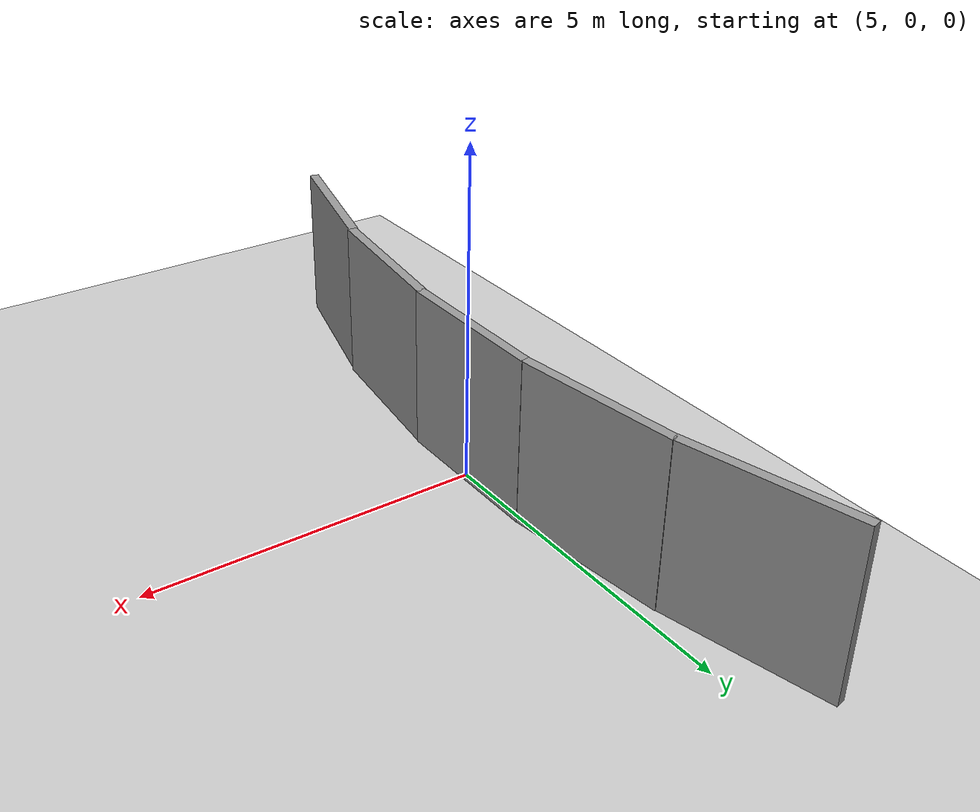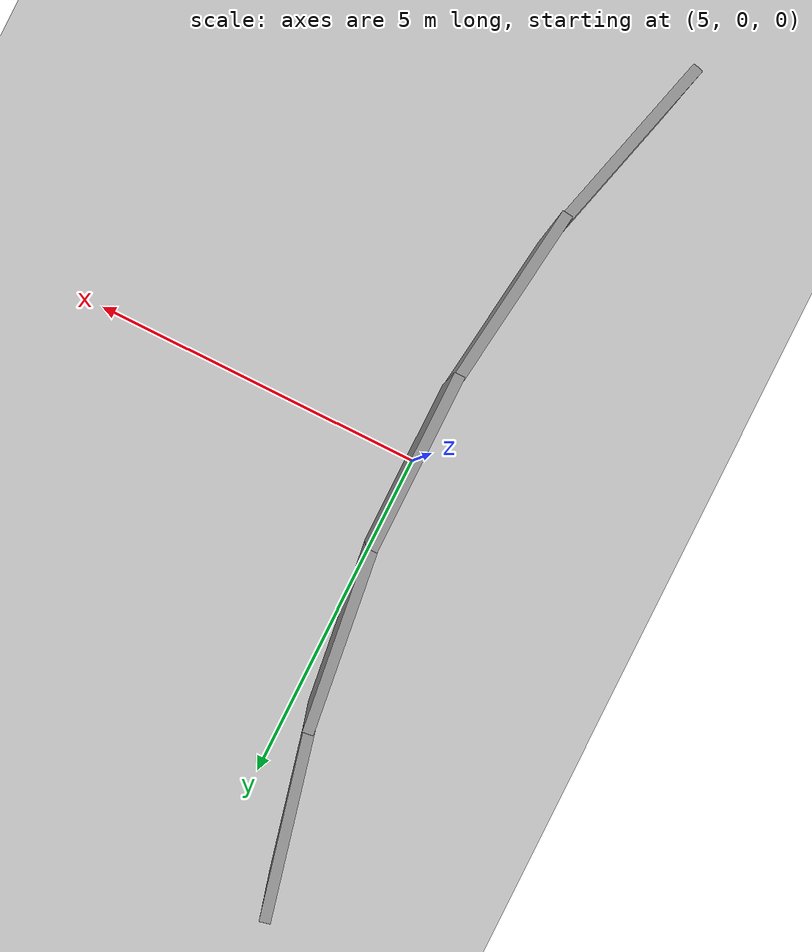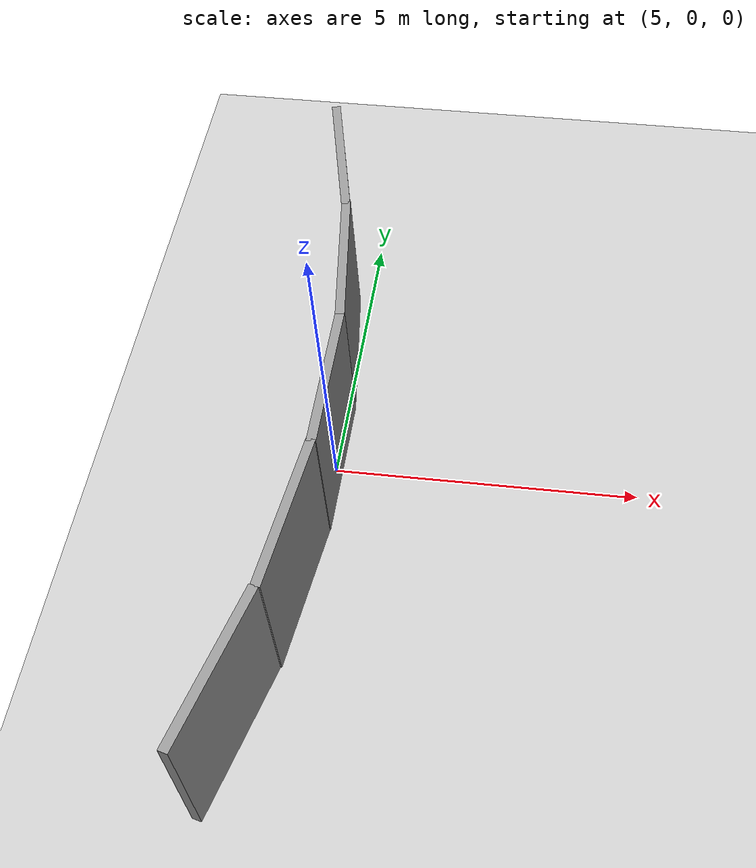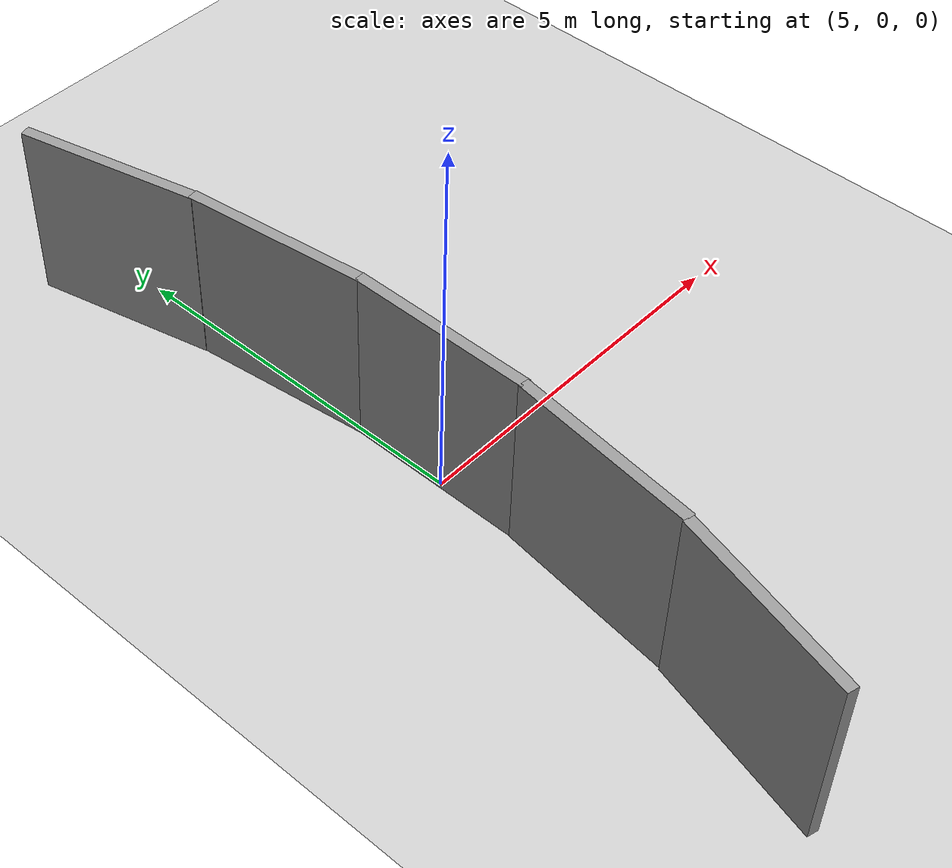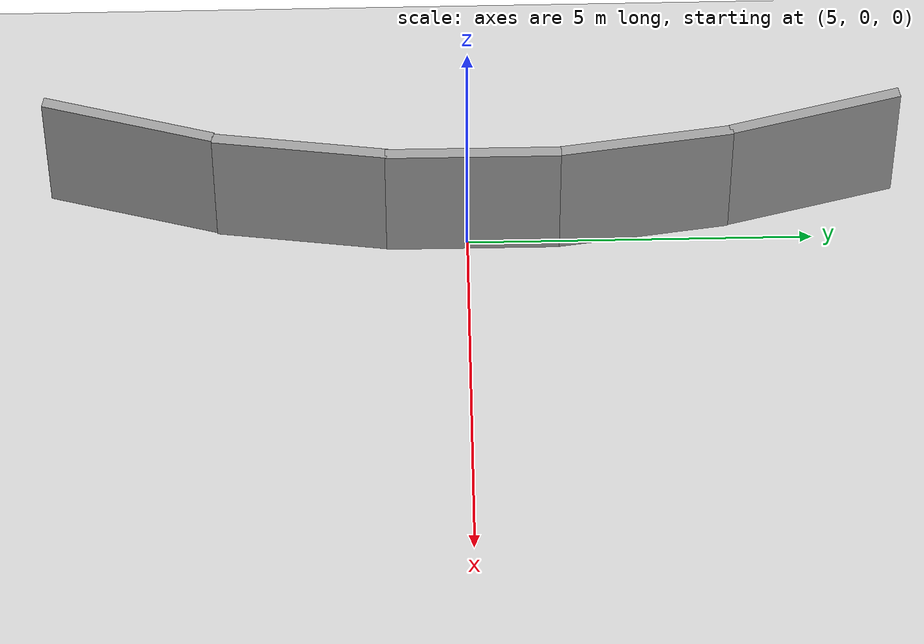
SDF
<sdf version="1.6">
 <world name="default">
  <light name="sun" type="directional">
   <pose>0 0 10 0 -0 0</pose>
   <diffuse>0.8 0.8 0.8 1</diffuse>
   <specular>0.2 0.2 0.2 1</specular>
   <attenuation>
    <range>1000</range>
    <constant>0.9</constant>
    <linear>0.01</linear>
    <quadratic>0.001</quadratic>
   </attenuation>
   <direction>-0.5 0.1 -0.9</direction>
  </light>
  <model name="ground_plane">
   <static>1</static>
   <link name="link">
    <collision name="collision">
     <geometry><plane><normal>0 0 1</normal><size>100 100</size></plane></geometry>
     <surface>
      <contact><collide_bitmask>65535</collide_bitmask></contact>
      <friction><ode><mu>100</mu><mu2>50</mu2></ode></friction>
     </surface>
    </collision>
    <visual name="visual">
     <cast_shadows>0</cast_shadows>
     <geometry><plane><normal>0 0 1</normal><size>100 100</size></plane></geometry>
     <material>
      <script><uri>file://media/materials/scripts/gazebo.material</uri><name>Gazebo/Grey</name></script>
     </material>
    </visual>
   </link>
  </model>
  <gravity>0 0 -9.8</gravity>
  <magnetic_field>6e-06 2.3e-05 -4.2e-05</magnetic_field>
  <atmosphere type="adiabatic"/>
  <physics name="default_physics" default="0" type="ode">
   <max_step_size>0.001</max_step_size>
   <real_time_factor>1</real_time_factor>
   <real_time_update_rate>1000</real_time_update_rate>
  </physics>
  <scene><ambient>0.4 0.4 0.4 1</ambient><background>0.7 0.7 0.7 1</background><shadows>1</shadows></scene>
  <audio><device>default</device></audio>
  <spherical_coordinates>
   <surface_model>EARTH_WGS84</surface_model>
   <latitude_deg>0</latitude_deg>
   <longitude_deg>0</longitude_deg>
   <elevation>0</elevation>
   <heading_deg>0</heading_deg>
  </spherical_coordinates>
  <model name="2.5wall">
   <pose>5.02064 0.080586 0 0 -0 1.56821</pose>
   <link name="Wall_6">
    <collision name="Wall_6_Collision">
     <geometry><box><size>2.5 0.15 2.5</size></box></geometry>
     <pose>0 0 1.25 0 -0 0</pose>
    </collision>
    <visual name="Wall_6_Visual">
     <pose>0 0 1.25 0 -0 0</pose>
     <geometry><box><size>2.5 0.15 2.5</size></box></geometry>
     <material>
      <script><uri>file://media/materials/scripts/gazebo.material</uri><name>Gazebo/Grey</name></script>
      <ambient>1 1 1 1</ambient>
     </material>
     <meta><layer>0</layer></meta>
    </visual>
   </link>
   <static>1</static>
  </model>
  <model name="2.5wall_0">
   <pose>4.86814 2.53578 0 0 0 -1.44587</pose>
   <link name="Wall_6">
    <collision name="Wall_6_Collision">
     <geometry><box><size>2.5 0.15 2.5</size></box></geometry>
     <pose>0 0 1.25 0 -0 0</pose>
    </collision>
    <visual name="Wall_6_Visual">
     <pose>0 0 1.25 0 -0 0</pose>
     <geometry><box><size>2.5 0.15 2.5</size></box></geometry>
     <material>
      <script><uri>file://media/materials/scripts/gazebo.material</uri><name>Gazebo/Grey</name></script>
      <ambient>1 1 1 1</ambient>
     </material>
     <meta><layer>0</layer></meta>
    </visual>
   </link>
   <static>1</static>
  </model>
  <model name="2.5wall_clone">
   <pose>4.42185 4.95077 0 0 -0 1.80488</pose>
   <link name="Wall_6">
    <collision name="Wall_6_Collision">
     <geometry><box><size>2.5 0.15 2.5</size></box></geometry>
     <pose>0 0 1.25 0 -0 0</pose>
    </collision>
    <visual name="Wall_6_Visual">
     <pose>0 0 1.25 0 -0 0</pose>
     <geometry><box><size>2.5 0.15 2.5</size></box></geometry>
     <material>
      <script><uri>file://media/materials/scripts/gazebo.material</uri><name>Gazebo/Grey</name></script>
      <ambient>1 1 1 1</ambient>
     </material>
     <meta><layer>0</layer></meta>
    </visual>
   </link>
   <static>1</static>
  </model>
  <model name="2.5wall_clone_0">
   <pose>4.85749 -2.37137 0 0 -0 1.44753</pose>
   <link name="Wall_6">
    <collision name="Wall_6_Collision">
     <geometry><box><size>2.5 0.15 2.5</size></box></geometry>
     <pose>0 0 1.25 0 -0 0</pose>
    </collision>
    <visual name="Wall_6_Visual">
     <pose>0 0 1.25 0 -0 0</pose>
     <geometry><box><size>2.5 0.15 2.5</size></box></geometry>
     <material>
      <script><uri>file://media/materials/scripts/gazebo.material</uri><name>Gazebo/Grey</name></script>
      <ambient>1 1 1 1</ambient>
     </material>
     <meta><layer>0</layer></meta>
    </visual>
   </link>
   <static>1</static>
  </model>
  <model name="2.5wall_clone_0_clone">
   <pose>4.36871 -4.80587 0 0 -0 1.31324</pose>
   <link name="Wall_6">
    <collision name="Wall_6_Collision">
     <geometry><box><size>2.5 0.15 2.5</size></box></geometry>
     <pose>0 0 1.25 0 -0 0</pose>
    </collision>
    <visual name="Wall_6_Visual">
     <pose>0 0 1.25 0 -0 0</pose>
     <geometry><box><size>2.5 0.15 2.5</size></box></geometry>
     <material>
      <script><uri>file://media/materials/scripts/gazebo.material</uri><name>Gazebo/Grey</name></script>
      <ambient>1 1 1 1</ambient>
     </material>
     <meta><layer>0</layer></meta>
    </visual>
   </link>
   <static>1</static>
  </model>
 </world>
</sdf>
